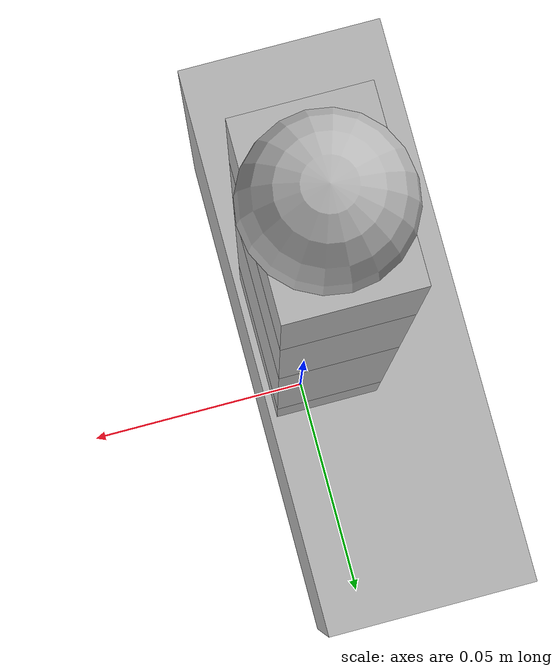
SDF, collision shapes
<?xml version='1.0'?>
<sdf version='1.6'>
  <model name='allegro_hand_right'>
     <link name='hand_root'>
      <pose frame=''>0 0 0 0 -0 0</pose>
      <inertial>
        <pose frame=''>0 0 0 0 -0 0</pose>
        <mass>0.4154</mass>
        <inertia>
          <ixx>    2.089e-03</ixx>
          <ixy>-0.003635e-03</ixy>
          <ixz>   0.2233e-03</ixz>
          <iyy>    1.829e-03</iyy>
          <iyz> -0.01756e-03</iyz>
          <izz>   0.4825e-03</izz>
        </inertia>
      </inertial>
      <collision name='hand_root_fixed_joint_lump__palm_link_collision'>
        <pose frame=''>-0.0093 0 0.0475 0 -0 0</pose>
        <geometry>
          <box>
            <size>0.0408 0.113 0.095</size>
          </box>
        </geometry>
      </collision>
      <visual name='hand_root_fixed_joint_lump__palm_link_visual'>
        <pose frame=''>0 0 0.095 0 -0 0</pose>
        <geometry>
          <mesh>
            <scale>1 1 1</scale>
            <uri>../meshes/base_link.obj</uri>
          </mesh>
        </geometry>
      </visual>
    </link>
    <link name='link_4'>
      <pose frame=''>0 0 0.0957 0 -0 0</pose>
      <inertial>
        <pose frame=''>0 0 0 0 -0 0</pose>
        <mass>0.0119</mass>
        <inertia>
          <ixx>   1.954e-06</ixx>
          <ixy>0.003034e-06</ixy>
          <ixz> 0.08923e-06</ixz>
          <iyy>   1.179e-06</iyy>
          <iyz>-0.03707e-06</iyz>
          <izz>   1.497e-06</izz>
        </inertia>
      </inertial>
      <collision name='link_4_collision'>
        <pose frame=''>0 0 0.0082 0 -0 0</pose>
        <geometry>
          <box>
            <size>0.0196 0.0275 0.0164</size>
          </box>
        </geometry>
      </collision>
      <visual name='link_4_visual'>
        <pose frame=''>0 0 0 0 -0 0</pose>
        <geometry>
          <mesh>
            <scale>1 1 1</scale>
            <uri>../meshes/link_0.0.obj</uri>
          </mesh>
        </geometry>
      </visual>
    </link>
    <joint name='joint_4' type='revolute'>
      <child>link_4</child>
      <parent>hand_root</parent>
      <axis>
        <xyz>0 0 1</xyz>
        <limit>
          <lower>-0.47</lower>
          <upper>0.47</upper>
          <effort>0.7</effort>
        </limit>
        <dynamics>
          <damping>1.5e-2</damping>
        </dynamics>
        <use_parent_model_frame>1</use_parent_model_frame>
      </axis>
    </joint>
    <link name='link_5'>
      <pose frame=''>0 0 0.1121 0 -0 0</pose>
      <inertial>
        <pose frame=''>0 0 0 0 -0 0</pose>
        <mass>0.065</mass>
        <inertia>
          <ixx>  7.192e-05</ixx>
          <ixy>          0</ixy>
          <ixz>          0</ixz>
          <iyy>  7.438e-05</iyy>
          <iyz>0.07322e-05</iyz>
          <izz> 0.5406e-05</izz>
        </inertia>
      </inertial>
      <collision name='link_5_collision'>
        <pose frame=''>0 0 0.027 0 -0 0</pose>
        <geometry>
          <box>
            <size>0.0196 0.0275 0.054</size>
          </box>
        </geometry>
      </collision>
      <visual name='link_5_visual'>
        <pose frame=''>0 0 0 0 -0 0</pose>
        <geometry>
          <mesh>
            <scale>1 1 1</scale>
            <uri>../meshes/link_1.0.obj</uri>
          </mesh>
        </geometry>
      </visual>
    </link>
    <joint name='joint_5' type='revolute'>
      <child>link_5</child>
      <parent>link_4</parent>
      <axis>
        <xyz>0 1 0</xyz>
        <limit>
          <lower>-0.196</lower>
          <upper>1.61</upper>
          <effort>0.7</effort>
        </limit>
        <dynamics>
          <damping>1.5e-2</damping>
        </dynamics>
        <use_parent_model_frame>1</use_parent_model_frame>
      </axis>
    </joint>
  <link name='link_6'>
      <pose frame=''>0 0 0.1661 0 -0 0</pose>
      <inertial>
        <pose frame=''>0 0 0 0 -0 0</pose>
        <mass>0.0355</mass>
        <inertia>
          <ixx>     3.169e-05</ixx>
          <ixy> 0.0001071e-05</ixy>
          <ixz>-0.0004913e-05</ixz>
          <iyy>     3.105e-05</iyy>
          <iyz>  0.003875e-05</iyz>
          <izz>    0.3203e-05</izz>
        </inertia>
      </inertial>
      <collision name='link_6_collision'>
        <pose frame=''>0 0 0.0192 0 -0 0</pose>
        <geometry>
          <box>
            <size>0.0196 0.0275 0.0384</size>
          </box>
        </geometry>
      </collision>
      <visual name='link_6_visual'>
        <pose frame=''>0 0 0 0 -0 0</pose>
        <geometry>
          <mesh>
            <scale>1 1 1</scale>
            <uri>../meshes/link_2.0.obj</uri>
          </mesh>
        </geometry>
      </visual>
    </link>
    <joint name='joint_6' type='revolute'>
      <child>link_6</child>
      <parent>link_5</parent>
      <axis>
        <xyz>0 1 0</xyz>
        <limit>
          <lower>-0.174</lower>
          <upper>1.709</upper>
          <effort>0.7</effort>
        </limit>
        <dynamics>
          <damping>1.5e-2</damping>
        </dynamics>
        <use_parent_model_frame>1</use_parent_model_frame>
      </axis>
    </joint>
    <link name='link_7'>
      <pose frame=''>0 0 0.2045 0 -0 0</pose>
      <inertial>
        <pose frame=''>0 0 0 0 -0 0</pose>
        <mass>0.0264</mass>
        <inertia>
          <ixx>   1.263e-05</ixx>
          <ixy> 0.00021e-05</ixy>
          <ixz>-0.00098e-05</ixz>
          <iyy>   1.182e-05</iyy>
          <iyz> -0.0013e-05</iyz>
          <izz>  0.2484e-05</izz>
        </inertia>
      </inertial>
      <collision name='link_7_collision'>
        <pose frame=''>0 0 0.01335 0 -0 0</pose>
        <geometry>
          <box>
            <size>0.0196 0.0275 0.0267</size>
          </box>
        </geometry>
	    </collision>
      <collision name='link_7_tip_collision_1'>
        <pose frame=''>0 0 0.0267 0 -0 0</pose>
        <geometry>
          <sphere>
            <radius>0.012</radius>
          </sphere>
        </geometry>
      </collision>
      <visual name='link_7_visual'>
        <pose frame=''>0 0 0 0 -0 0</pose>
        <geometry>
          <mesh>
            <scale>1 1 1</scale>
            <uri>../meshes/link_3.0.obj</uri>
          </mesh>
        </geometry>
      </visual>
      <visual name='link_7_tip_visual_1'>
        <pose frame=''>0 0 0.0267 0 -0 0</pose>
        <geometry>
          <mesh>
            <scale>1 1 1</scale>
            <uri>../meshes/link_3.0_tip.obj</uri>
          </mesh>
        </geometry>
      </visual>
    </link>
    <joint name='joint_7' type='revolute'>
      <child>link_7</child>
      <parent>link_6</parent>
      <axis>
        <xyz>0 1 0</xyz>
        <limit>
          <lower>-0.227</lower>
          <upper>1.618</upper>
          <effort>0.7</effort>
        </limit>
        <dynamics>
          <damping>1.5e-2</damping>
        </dynamics>
        <use_parent_model_frame>1</use_parent_model_frame>
      </axis>
    </joint>
  </model>
</sdf>
